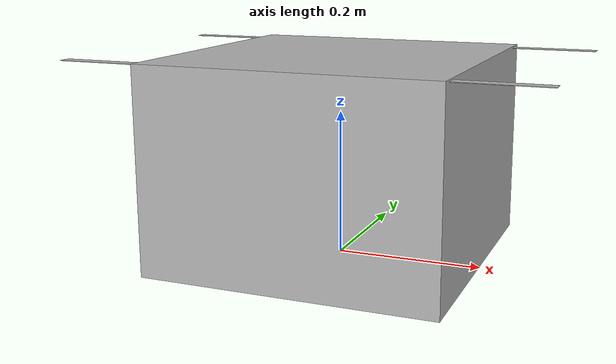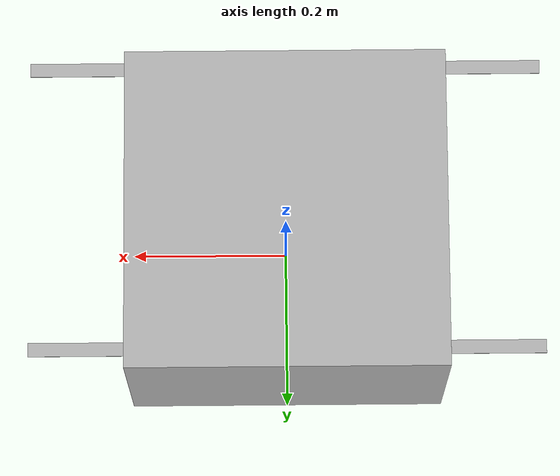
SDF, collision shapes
<?xml version="1.0" encoding="UTF-8"?>
<sdf version='1.9'>
  <model name='custom_x500_4edf'>
    <pose>0 0 0.217 0 0 0</pose>
    <self_collide>false</self_collide>
    <static>false</static>
    <link name="base_link">
    <inertial>
        <pose>0 0 0.015702 0 0 0</pose>
        <mass>2.17</mass>
        <inertia>
          <ixx>0.0037</ixx>
          <ixy>0</ixy>
          <ixz>0</ixz>
          <iyy>0.0037</iyy>
          <iyz>0</iyz>
          <izz>0.0061</izz>
        </inertia>
      </inertial>
      <gravity>true</gravity>
      <velocity_decay/>
      <visual name="base_link_visual">
        <pose>0 0 0 0 0 0</pose>
        <geometry>
          <mesh>
            <scale>1 1 1</scale>
            <uri>model://custom_x500_4edf/meshes/uav_frame_x500_simple.dae</uri>
          </mesh>
        </geometry>
      </visual>
      <!-- Collision definition -->
      <collision name="base_link_collision_0">
        <pose> 0 0 -0.076276 0 0 0</pose>
        <geometry>
          <box>
            <size>0.40 0.40 0.278 </size>
          </box>
        </geometry>
        <surface>
          <contact>
            <ode>
              <min_depth>0.001</min_depth>
              <max_vel>0</max_vel>
            </ode>
          </contact>
          <friction>
            <ode/>
          </friction>
        </surface>
      </collision>
<!-- Collision definition END-->
<!-- Flight Sensors  -->
      <sensor name="air_pressure_sensor" type="air_pressure">
        <always_on>1</always_on>
        <update_rate>50</update_rate>
        <air_pressure>
          <pressure>
            <noise type="gaussian">
              <mean>0</mean>
              <stddev>0.01</stddev>
            </noise>
          </pressure>
        </air_pressure>
      </sensor>

      <sensor name="imu_sensor" type="imu">
        <always_on>1</always_on>
        <update_rate>250</update_rate>
      </sensor>
<!-- Flight Sensors  -->
    </link>
<!-- Propellers definition -->
    <link name="rotor_0">
        <gravity>true</gravity>
        <self_collide>false</self_collide>
        <velocity_decay/>
        <pose>0.176876 -0.176876 0.06 0 0 0</pose>
        <inertial>
            <pose>0 0 -0.02 0 0 0</pose>
            <mass>0.075</mass>
            <inertia>
              <ixx>8.8307e-06</ixx>
              <iyy>8.8307e-06</iyy>
              <izz>7.5083e-06</izz>
            </inertia>
        </inertial>
       <visual name="rotor_0_visual">
        <pose>0 0 0 0 0 0</pose>
        <geometry>
          <mesh>
            <scale>1 1 1</scale>
            <uri>model://custom_x500_4edf/meshes/holybro_propeller_ccw.dae</uri>
          </mesh>
        </geometry>
      </visual>
      <collision name="rotor_0_collision">
        <pose>0 0 0 0 0 0 </pose>
        <geometry>
          <box>
            <size>0.2792307692307692 0.016923076923076923 0.0008461538461538462</size>
          </box>
        </geometry>
        <surface>
          <contact>
            <ode>
              <min_depth>0.001</min_depth>
              <max_vel>0</max_vel>
            </ode>
          </contact>
          <friction>
            <ode/>
          </friction>
        </surface>
      </collision>
    </link>
    <joint name="rotor_0_joint" type="revolute">
      <parent>base_link</parent>
      <child>rotor_0</child>
      <axis>
        <xyz>0 0 1</xyz>
        <limit>
          <lower>-1e+16</lower>
          <upper>1e+16</upper>
        </limit>
        <dynamics>
          <spring_reference>0</spring_reference>
          <spring_stiffness>0</spring_stiffness>
        </dynamics>
      </axis>
    </joint>

    <link name="rotor_1">
        <gravity>true</gravity>
        <self_collide>false</self_collide>
        <velocity_decay/>
        <pose>-0.176876 0.176876 0.06 0 0 0</pose>
        <inertial>
            <pose>0 0 -0.02 0 0 0</pose>
            <mass>0.075</mass>
            <inertia>
              <ixx>8.8307e-06</ixx>
              <iyy>8.8307e-06</iyy>
              <izz>7.5083e-06</izz>
            </inertia>
        </inertial>
       <visual name="rotor_1_visual">
        <pose>0 0 0 0 0 0</pose>
        <geometry>
          <mesh>
            <scale>1 1 1</scale>
            <uri>model://custom_x500_4edf/meshes/holybro_propeller_ccw.dae</uri>
          </mesh>
        </geometry>
      </visual>
      <collision name="rotor_1_collision">
        <pose>0 0 0 0 0 0 </pose>
        <geometry>
          <box>
            <size>0.2792307692307692 0.016923076923076923 0.0008461538461538462</size>
          </box>
        </geometry>
        <surface>
          <contact>
            <ode>
              <min_depth>0.001</min_depth>
              <max_vel>0</max_vel>
            </ode>
          </contact>
          <friction>
            <ode/>
          </friction>
        </surface>
      </collision>
    </link>
    <joint name="rotor_1_joint" type="revolute">
      <parent>base_link</parent>
      <child>rotor_1</child>
      <axis>
        <xyz>0 0 1</xyz>
        <limit>
          <lower>-1e+16</lower>
          <upper>1e+16</upper>
        </limit>
        <dynamics>
          <spring_reference>0</spring_reference>
          <spring_stiffness>0</spring_stiffness>
        </dynamics>
      </axis>
    </joint>

    <link name="rotor_2">
        <gravity>true</gravity>
        <self_collide>false</self_collide>
        <velocity_decay/>
        <pose> 0.176876 0.176876 0.06 0 0 0</pose>
        <inertial>
            <pose>0 0 -0.02 0 0 0</pose>
            <mass>0.075</mass>
            <inertia>
              <ixx>8.8307e-06</ixx>
              <iyy>8.8307e-06</iyy>
              <izz>7.5083e-06</izz>
            </inertia>
        </inertial>
       <visual name="rotor_2_visual">
        <pose>0 0 0 0 0 0</pose>
        <geometry>
          <mesh>
            <scale>1 1 1</scale>
            <uri>model://custom_x500_4edf/meshes/holybro_propeller_cw.dae</uri>
          </mesh>
        </geometry>
      </visual>
      <collision name="rotor_2_collision">
        <pose>0 0 0 0 0 0 </pose>
        <geometry>
          <box>
            <size>0.2792307692307692 0.016923076923076923 0.0008461538461538462</size>
          </box>
        </geometry>
        <surface>
          <contact>
            <ode>
              <min_depth>0.001</min_depth>
              <max_vel>0</max_vel>
            </ode>
          </contact>
          <friction>
            <ode/>
          </friction>
        </surface>
      </collision>
    </link>
    <joint name="rotor_2_joint" type="revolute">
      <parent>base_link</parent>
      <child>rotor_2</child>
      <axis>
        <xyz>0 0 1</xyz>
        <limit>
          <lower>-1e+16</lower>
          <upper>1e+16</upper>
        </limit>
        <dynamics>
          <spring_reference>0</spring_reference>
          <spring_stiffness>0</spring_stiffness>
        </dynamics>
      </axis>
    </joint>

    <link name="rotor_3">
        <gravity>true</gravity>
        <self_collide>false</self_collide>
        <velocity_decay/>
        <pose> -0.176876 -0.176876 0.06 0 0 0</pose>
        <inertial>
            <pose>0 0 -0.02 0 0 0</pose>
            <mass>0.075</mass>
            <inertia>
              <ixx>8.8307e-06</ixx>
              <iyy>8.8307e-06</iyy>
              <izz>7.5083e-06</izz>
            </inertia>
        </inertial>
       <visual name="rotor_3_visual">
        <pose>0 0 0 0 0 0</pose>
        <geometry>
          <mesh>
            <scale>1 1 1</scale>
            <uri>model://custom_x500_4edf/meshes/holybro_propeller_cw.dae</uri>
          </mesh>
        </geometry>
      </visual>
      <collision name="rotor_3_collision">
        <pose>0 0 0 0 0 0 </pose>
        <geometry>
          <box>
            <size>0.2792307692307692 0.016923076923076923 0.0008461538461538462</size>
          </box>
        </geometry>
        <surface>
          <contact>
            <ode>
              <min_depth>0.001</min_depth>
              <max_vel>0</max_vel>
            </ode>
          </contact>
          <friction>
            <ode/>
          </friction>
        </surface>
      </collision>
    </link>
    <joint name="rotor_3_joint" type="revolute">
      <parent>base_link</parent>
      <child>rotor_3</child>
      <axis>
        <xyz>0 0 1</xyz>
        <limit>
          <lower>-1e+16</lower>
          <upper>1e+16</upper>
        </limit>
        <dynamics>
          <spring_reference>0</spring_reference>
          <spring_stiffness>0</spring_stiffness>
        </dynamics>
      </axis>
    </joint>
<!-- Propellers definition END-->

<!-- EDF Frame 200 END -->
  <link name="edf_1_body">
        <gravity>true</gravity>
        <self_collide>false</self_collide>
        <velocity_decay/>
        <pose> -0.100 0 0 0 0 3.145159 </pose>
        <inertial>
            <pose> 0 0 0.031 0 0 0 </pose>
            <mass>0.175</mass>
            <inertia>
              <ixx>6.3787e-05</ixx>
              <iyy>8.6158e-05</iyy>
              <izz>8.6158e-05</izz>
            </inertia>
        </inertial>
       <visual name="edf_1_visual">
        <pose>0 0 0 0 0 0</pose>
        <geometry>
          <mesh>
            <scale>1 1 1</scale>
            <uri>model://custom_x500_4edf/meshes/edf_fixed.dae</uri>
          </mesh>
        </geometry>
      </visual>
      <collision name="edf_1_collision">
        <pose>0 0 0 0 0 0 </pose>
        <geometry>
          <box>
            <size>0.01 0.01 0.01</size>
          </box>
        </geometry>
        <surface>
          <contact>
            <ode>
              <min_depth>0.001</min_depth>
              <max_vel>0</max_vel>
            </ode>
          </contact>
          <friction>
            <ode/>
          </friction>
        </surface>
      </collision>
    </link>
    <joint name="edf_1_joint" type="revolute">
      <parent>base_link</parent>
      <child>edf_1_body</child>
      <pose> 0 0 0 0 0 0 </pose>
      <axis>
        <xyz>0 0 1</xyz>
        <limit>
          <lower>-0.53</lower>
          <upper>0.53</upper>
        </limit>
        <dynamics>
          <friction>1.0</friction>
          <spring_reference>0</spring_reference>
          <spring_stiffness>0</spring_stiffness>
        </dynamics>
      </axis>
    </joint>

    <link name="edf_2_body">
        <gravity>true</gravity>
        <self_collide>false</self_collide>
        <velocity_decay/>
        <pose> 0.100 0 0 0 0 0 </pose>
         <inertial>
            <pose> 0 0 0.031 0 0 0 </pose>
            <mass>0.175</mass>
            <inertia>
              <ixx>6.3787e-05</ixx>
              <iyy>8.6158e-05</iyy>
              <izz>8.6158e-05</izz>
            </inertia>
        </inertial>
      <visual name="edf_2_visual">
        <pose>0 0 0 0 0 0</pose>
        <geometry>
          <mesh>
            <scale>1 1 1</scale>
            <uri>model://custom_x500_4edf/meshes/edf_fixed.dae</uri>
          </mesh>
        </geometry>
      </visual>
      <collision name="edf_2_collision">
        <pose>0 0 0 0 0 0 </pose>
        <geometry>
          <box>
            <size>0.01 0.01 0.01</size>
          </box>
        </geometry>
        <surface>
          <contact>
            <ode>
              <min_depth>0.001</min_depth>
              <max_vel>0</max_vel>
            </ode>
          </contact>
          <friction>
            <ode/>
          </friction>
        </surface>
      </collision>
    </link>
    <joint name="edf_2_joint" type="revolute">
      <parent>base_link</parent>
      <child>edf_2_body</child>
      <pose> 0 0 0 0 0 0 </pose>
      <axis>
        <xyz>0 0 1</xyz>
        <limit>
          <lower>-0.53</lower>
          <upper>0.53</upper>
        </limit>
        <dynamics>
          <friction>1.0</friction>
          <spring_reference>0</spring_reference>
          <spring_stiffness>0</spring_stiffness>
        </dynamics>
      </axis>
    </joint>

  <link name="edf_3_body">
        <gravity>true</gravity>
        <self_collide>false</self_collide>
        <velocity_decay/>
        <pose> 0 -0.100 0 0 0 -1.5708 </pose>
        <inertial>
            <pose> 0 0 0.031 0 0 0 </pose>
            <mass>0.175</mass>
            <inertia>
              <ixx>6.3787e-05</ixx>
              <iyy>8.6158e-05</iyy>
              <izz>8.6158e-05</izz>
            </inertia>
        </inertial>
       <visual name="edf_3_visual">
        <pose>0 0 0 0 0 0</pose>
        <geometry>
          <mesh>
            <scale>1 1 1</scale>
            <uri>model://custom_x500_4edf/meshes/edf_fixed.dae</uri>
          </mesh>
        </geometry>
      </visual>
      <collision name="edf_3_collision">
        <pose>0 0 0 0 0 0 </pose>
        <geometry>
          <box>
            <size>0.01 0.01 0.01</size>
          </box>
        </geometry>
        <surface>
          <contact>
            <ode>
              <min_depth>0.001</min_depth>
              <max_vel>0</max_vel>
            </ode>
          </contact>
          <friction>
            <ode/>
          </friction>
        </surface>
      </collision>
    </link>
    <joint name="edf_3_joint" type="revolute">
      <parent>base_link</parent>
      <child>edf_3_body</child>
      <pose> 0 0 0 0 0 0 </pose>
      <axis>
        <xyz>0 0 1</xyz>
        <limit>
          <lower>-0.53</lower>
          <upper>0.53</upper>
        </limit>
        <dynamics>
          <friction>1.0</friction>
          <spring_reference>0</spring_reference>
          <spring_stiffness>0</spring_stiffness>
        </dynamics>
      </axis>
    </joint>

    <link name="edf_4_body">
        <gravity>true</gravity>
        <self_collide>false</self_collide>
        <velocity_decay/>
        <pose> 0 0.100 0 0 0 1.5708 </pose>
         <inertial>
            <pose> 0 0 0.031 0 0 0 </pose>
            <mass>0.175</mass>
            <inertia>
              <ixx>6.3787e-05</ixx>
              <iyy>8.6158e-05</iyy>
              <izz>8.6158e-05</izz>
            </inertia>
        </inertial>
      <visual name="edf_4_visual">
        <pose>0 0 0 0 0 0</pose>
        <geometry>
          <mesh>
            <scale>1 1 1</scale>
            <uri>model://custom_x500_4edf/meshes/edf_fixed.dae</uri>
          </mesh>
        </geometry>
      </visual>
      <collision name="edf_4_collision">
        <pose>0 0 0 0 0 0 </pose>
        <geometry>
          <box>
            <size>0.01 0.01 0.01</size>
          </box>
        </geometry>
        <surface>
          <contact>
            <ode>
              <min_depth>0.001</min_depth>
              <max_vel>0</max_vel>
            </ode>
          </contact>
          <friction>
            <ode/>
          </friction>
        </surface>
      </collision>
    </link>
    <joint name="edf_4_joint" type="revolute">
      <parent>base_link</parent>
      <child>edf_4_body</child>
      <pose> 0 0 0 0 0 0 </pose>
      <axis>
        <xyz>0 0 1</xyz>
        <limit>
          <lower>-0.53</lower>
          <upper>0.53</upper>
        </limit>
        <dynamics>
          <friction>1.0</friction>
          <spring_reference>0</spring_reference>
          <spring_stiffness>0</spring_stiffness>
        </dynamics>
      </axis>
    </joint>

<!-- Horizontal thrusters -->
<link name="rotor_4">
        <gravity>true</gravity>
        <self_collide>false</self_collide>
        <velocity_decay/>
        <pose> -0.100 0 0.031 0 1.5708 0</pose>
        <inertial>
          <mass>0.016076923076923075</mass>
          <inertia>
            <ixx>1.349858234714004e-05</ixx>
            <iyy>1.349858234714004e-05</iyy>
            <izz>1.0464910483993325e-07</izz>
        </inertia>
        </inertial>
       <visual name="rotor_4_visual">
        <pose>0 0 0 0 0 0</pose>
        <geometry>
          <mesh>
            <scale>1 1 1</scale>
            <uri>model://custom_x500_4edf/meshes/edf_impeler.dae</uri>
          </mesh>
        </geometry>
      </visual>
      <collision name="rotor_4_collision">
        <pose>0 0 0 0 0 0 </pose>
        <geometry>
          <box>
            <size>0.0008461538461538462 0.016923076923076923 0.004</size>
          </box>
        </geometry>
        <surface>
          <contact>
            <ode>
              <min_depth>0.001</min_depth>
              <max_vel>0</max_vel>
            </ode>
          </contact>
          <friction>
            <ode/>
          </friction>
        </surface>
      </collision>
    </link>

    <joint name="rotor_4_joint" type="revolute">
      <parent>edf_1_body</parent>
      <child>rotor_4</child>
      <axis>
        <xyz>0 0 1</xyz>
        <limit>
          <lower>-1e+16</lower>
          <upper>1e+16</upper>
        </limit>
        <dynamics>
          <spring_reference>0</spring_reference>
          <spring_stiffness>0</spring_stiffness>
        </dynamics>
      </axis>
    </joint>

    <link name="rotor_5">
        <gravity>true</gravity>
        <self_collide>false</self_collide>
        <velocity_decay/>
        <pose> 0.100 0 0.031 0 -1.5708 0</pose>
       <inertial>
          <mass>0.016076923076923075</mass>
          <inertia>
            <ixx>1.349858234714004e-05</ixx>
            <iyy>1.349858234714004e-05</iyy>
            <izz>1.0464910483993325e-07</izz>
          </inertia>
        </inertial>
       <visual name="rotor_5_visual">
        <pose>0 0 0 0 0 0</pose>
        <geometry>
          <mesh>
            <scale>1 1 1</scale>
            <uri>model://custom_x500_4edf/meshes/edf_impeler.dae</uri>
          </mesh>
        </geometry>
      </visual>
      <collision name="rotor_5_collision">
        <pose>0 0 0 0 0 0 </pose>
        <geometry>
          <box>
            <size>0.0008461538461538462 0.016923076923076923 0.004</size>
          </box>
        </geometry>
        <surface>
          <contact>
            <ode>
              <min_depth>0.001</min_depth>
              <max_vel>0</max_vel>
            </ode>
          </contact>
          <friction>
            <ode/>
          </friction>
        </surface>
      </collision>
    </link>
    <joint name="rotor_5_joint" type="revolute">
      <parent>edf_2_body</parent>
      <child>rotor_5</child>
      <axis>
        <xyz>0 0 1</xyz>
        <limit>
          <lower>-1e+16</lower>
          <upper>1e+16</upper>
        </limit>
        <dynamics>
          <spring_reference>0</spring_reference>
          <spring_stiffness>0</spring_stiffness>
        </dynamics>
      </axis>
    </joint>

     <link name="rotor_6">
        <gravity>true</gravity>
        <self_collide>false</self_collide>
        <velocity_decay/>
        <pose> 0 -0.100 0.031 0 1.5708 1.5708 </pose>
       <inertial>
          <mass>0.016076923076923075</mass>
          <inertia>
            <ixx>1.349858234714004e-05</ixx>
            <iyy>1.349858234714004e-05</iyy>
            <izz>1.0464910483993325e-07</izz>
          </inertia>
        </inertial>
       <visual name="rotor_6_visual">
        <pose>0 0 0 0 0 0</pose>
        <geometry>
          <mesh>
            <scale>1 1 1</scale>
            <uri>model://custom_x500_4edf/meshes/edf_impeler.dae</uri>
          </mesh>
        </geometry>
      </visual>
      <collision name="rotor_6_collision">
        <pose>0 0 0 0 0 0 </pose>
        <geometry>
          <box>
            <size>0.0008461538461538462 0.016923076923076923 0.004</size>
          </box>
        </geometry>
        <surface>
          <contact>
            <ode>
              <min_depth>0.001</min_depth>
              <max_vel>0</max_vel>
            </ode>
          </contact>
          <friction>
            <ode/>
          </friction>
        </surface>
      </collision>
    </link>
    <joint name="rotor_6_joint" type="revolute">
      <parent>edf_3_body</parent>
      <child>rotor_6</child>
      <axis>
        <xyz>0 0 1</xyz>
        <limit>
          <lower>-1e+16</lower>
          <upper>1e+16</upper>
        </limit>
        <dynamics>
          <spring_reference>0</spring_reference>
          <spring_stiffness>0</spring_stiffness>
        </dynamics>
      </axis>
    </joint>

    <link name="rotor_7">
        <gravity>true</gravity>
        <self_collide>false</self_collide>
        <velocity_decay/>
        <pose> 0 0.100 0.031 0 1.5708 -1.5708</pose>
        <inertial>
          <mass>0.016076923076923075</mass>
          <inertia>
            <ixx>1.349858234714004e-05</ixx>
            <iyy>1.349858234714004e-05</iyy>
            <izz>1.0464910483993325e-07</izz>
        </inertia>
        </inertial>
       <visual name="rotor_7_visual">
        <pose>0 0 0 0 0 0</pose>
        <geometry>
          <mesh>
            <scale>1 1 1</scale>
            <uri>model://custom_x500_4edf/meshes/edf_impeler.dae</uri>
          </mesh>
        </geometry>
      </visual>
      <collision name="rotor_7_collision">
        <pose>0 0 0 0 0 0 </pose>
        <geometry>
          <box>
            <size>0.0008461538461538462 0.016923076923076923 0.004</size>
          </box>
        </geometry>
        <surface>
          <contact>
            <ode>
              <min_depth>0.001</min_depth>
              <max_vel>0</max_vel>
            </ode>
          </contact>
          <friction>
            <ode/>
          </friction>
        </surface>
      </collision>
    </link>

    <joint name="rotor_7_joint" type="revolute">
      <parent>edf_4_body</parent>
      <child>rotor_7</child>
      <axis>
        <xyz>0 0 1</xyz>
        <limit>
          <lower>-1e+16</lower>
          <upper>1e+16</upper>
        </limit>
        <dynamics>
          <spring_reference>0</spring_reference>
          <spring_stiffness>0</spring_stiffness>
        </dynamics>
      </axis>
    </joint>
<!-- Manipulator arm  END -->
<!-- Additional Rotors 4,5END -->

   <plugin filename="gz-sim-multicopter-motor-model-system" name="gz::sim::systems::MulticopterMotorModel">
      <jointName>rotor_0_joint</jointName>
      <linkName>rotor_0</linkName>
      <turningDirection>ccw</turningDirection>
      <timeConstantUp>0.0125</timeConstantUp>
      <timeConstantDown>0.025</timeConstantDown>
      <maxRotVelocity>10920.0</maxRotVelocity>
      <motorConstant>12.1311e-06</motorConstant>
      <momentConstant>0.016</momentConstant>
      <commandSubTopic>command/motor_speed</commandSubTopic>
      <motorNumber>0</motorNumber>
      <rotorDragCoefficient>8.06428e-05</rotorDragCoefficient>
      <rollingMomentCoefficient>1e-06</rollingMomentCoefficient>
      <rotorVelocitySlowdownSim>10</rotorVelocitySlowdownSim>
      <motorType>velocity</motorType>
    </plugin>
    <plugin filename="gz-sim-multicopter-motor-model-system" name="gz::sim::systems::MulticopterMotorModel">
      <jointName>rotor_1_joint</jointName>
      <linkName>rotor_1</linkName>
      <turningDirection>ccw</turningDirection>
      <timeConstantUp>0.0125</timeConstantUp>
      <timeConstantDown>0.025</timeConstantDown>
     <maxRotVelocity>10920.0</maxRotVelocity>
      <motorConstant>12.1311e-06</motorConstant>
      <momentConstant>0.016</momentConstant>
      <commandSubTopic>command/motor_speed</commandSubTopic>
      <motorNumber>1</motorNumber>
      <rotorDragCoefficient>8.06428e-05</rotorDragCoefficient>
      <rollingMomentCoefficient>1e-06</rollingMomentCoefficient>
      <rotorVelocitySlowdownSim>10</rotorVelocitySlowdownSim>
      <motorType>velocity</motorType>
    </plugin>
    <plugin filename="gz-sim-multicopter-motor-model-system" name="gz::sim::systems::MulticopterMotorModel">
      <jointName>rotor_2_joint</jointName>
      <linkName>rotor_2</linkName>
      <turningDirection>cw</turningDirection>
      <timeConstantUp>0.0125</timeConstantUp>
      <timeConstantDown>0.025</timeConstantDown>
      <maxRotVelocity>10920.0</maxRotVelocity>
      <motorConstant>12.1311e-06</motorConstant>
      <momentConstant>0.016</momentConstant>
      <commandSubTopic>command/motor_speed</commandSubTopic>
      <motorNumber>2</motorNumber>
      <rotorDragCoefficient>8.06428e-05</rotorDragCoefficient>
      <rollingMomentCoefficient>1e-06</rollingMomentCoefficient>
      <rotorVelocitySlowdownSim>10</rotorVelocitySlowdownSim>
      <motorType>velocity</motorType>
    </plugin>
    <plugin filename="gz-sim-multicopter-motor-model-system" name="gz::sim::systems::MulticopterMotorModel">
      <jointName>rotor_3_joint</jointName>
      <linkName>rotor_3</linkName>
      <turningDirection>cw</turningDirection>
      <timeConstantUp>0.0125</timeConstantUp>
      <timeConstantDown>0.025</timeConstantDown>
     <maxRotVelocity>10920.0</maxRotVelocity>
      <motorConstant>12.1311e-06</motorConstant>
      <momentConstant>0.016</momentConstant>
      <commandSubTopic>command/motor_speed</commandSubTopic>
      <motorNumber>3</motorNumber>
      <rotorDragCoefficient>8.06428e-05</rotorDragCoefficient>
      <rollingMomentCoefficient>1e-06</rollingMomentCoefficient>
      <rotorVelocitySlowdownSim>10</rotorVelocitySlowdownSim>
      <motorType>velocity</motorType>
    </plugin>

    <!-- Horizontal thrusters -->
    <plugin filename="gz-sim-multicopter-motor-model-system" name="gz::sim::systems::MulticopterMotorModel">
      <jointName>rotor_4_joint</jointName>
      <linkName>rotor_4</linkName>
      <turningDirection>cw</turningDirection>
      <timeConstantUp>0.0125</timeConstantUp>
      <timeConstantDown>0.025</timeConstantDown>
   <maxRotVelocity>10920.0</maxRotVelocity>
      <motorConstant>12.1311e-06</motorConstant>
      <momentConstant>0.016</momentConstant>
      <commandSubTopic>command/motor_speed</commandSubTopic>
      <motorNumber>4</motorNumber>
      <rotorDragCoefficient>8.06428e-05</rotorDragCoefficient>
      <rollingMomentCoefficient>1e-06</rollingMomentCoefficient>
      <rotorVelocitySlowdownSim>10</rotorVelocitySlowdownSim>
      <motorType>velocity</motorType>
    </plugin>

    <plugin filename="gz-sim-multicopter-motor-model-system" name="gz::sim::systems::MulticopterMotorModel">
      <jointName>rotor_5_joint</jointName>
      <linkName>rotor_5</linkName>
      <turningDirection>cw</turningDirection>
      <timeConstantUp>0.0125</timeConstantUp>
      <timeConstantDown>0.025</timeConstantDown>
       <maxRotVelocity>10920.0</maxRotVelocity>
      <motorConstant>12.1311e-06</motorConstant>
      <momentConstant>0.016</momentConstant>
      <commandSubTopic>command/motor_speed</commandSubTopic>
      <motorNumber>5</motorNumber>
      <rotorDragCoefficient>8.06428e-05</rotorDragCoefficient>
      <rollingMomentCoefficient>1e-06</rollingMomentCoefficient>
      <rotorVelocitySlowdownSim>10</rotorVelocitySlowdownSim>
      <motorType>velocity</motorType>
    </plugin>

      <plugin filename="gz-sim-multicopter-motor-model-system" name="gz::sim::systems::MulticopterMotorModel">
      <jointName>rotor_6_joint</jointName>
      <linkName>rotor_6</linkName>
      <turningDirection>cw</turningDirection>
      <timeConstantUp>0.0125</timeConstantUp>
      <timeConstantDown>0.025</timeConstantDown>
       <maxRotVelocity>10920.0</maxRotVelocity>
      <motorConstant>12.1311e-06</motorConstant>
      <momentConstant>0.016</momentConstant>
      <commandSubTopic>command/motor_speed</commandSubTopic>
      <motorNumber>6</motorNumber>
      <rotorDragCoefficient>8.06428e-05</rotorDragCoefficient>
      <rollingMomentCoefficient>1e-06</rollingMomentCoefficient>
      <rotorVelocitySlowdownSim>10</rotorVelocitySlowdownSim>
      <motorType>velocity</motorType>
    </plugin>

          <plugin filename="gz-sim-multicopter-motor-model-system" name="gz::sim::systems::MulticopterMotorModel">
      <jointName>rotor_7_joint</jointName>
      <linkName>rotor_7</linkName>
      <turningDirection>cw</turningDirection>
      <timeConstantUp>0.0125</timeConstantUp>
      <timeConstantDown>0.025</timeConstantDown>
       <maxRotVelocity>10920.0</maxRotVelocity>
      <motorConstant>12.1311e-06</motorConstant>
      <momentConstant>0.016</momentConstant>
      <commandSubTopic>command/motor_speed</commandSubTopic>
      <motorNumber>7</motorNumber>
      <rotorDragCoefficient>8.06428e-05</rotorDragCoefficient>
      <rollingMomentCoefficient>1e-06</rollingMomentCoefficient>
      <rotorVelocitySlowdownSim>10</rotorVelocitySlowdownSim>
      <motorType>velocity</motorType>
    </plugin>
<!-- Horizontal thrusters END-->

  </model>
</sdf>
